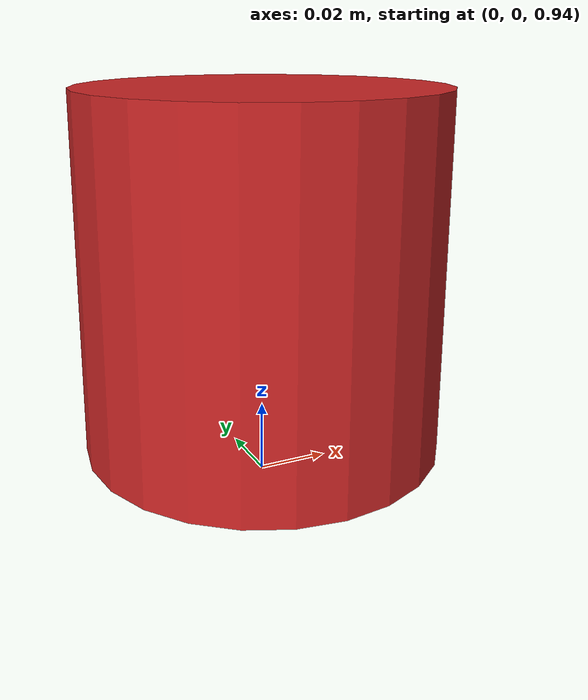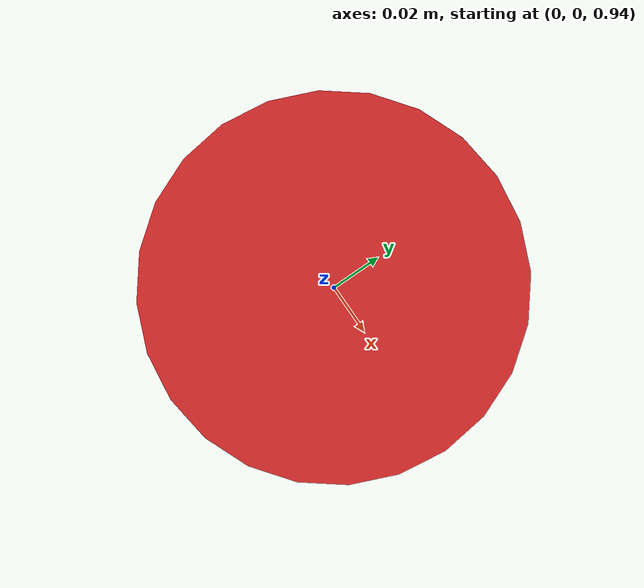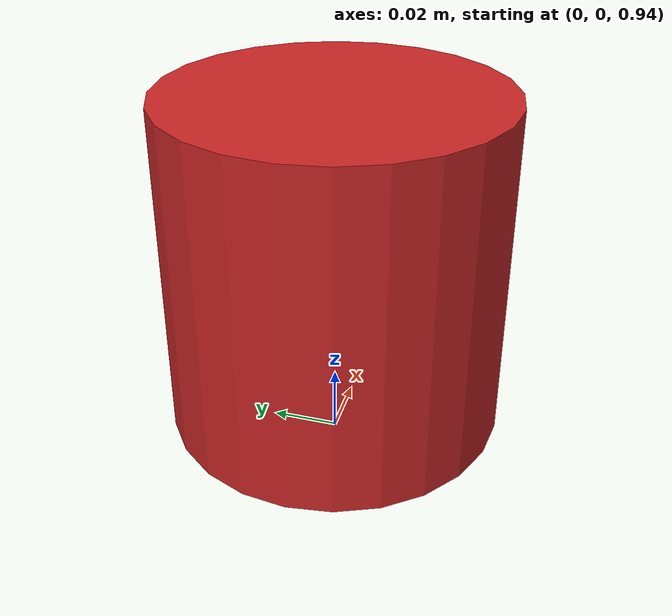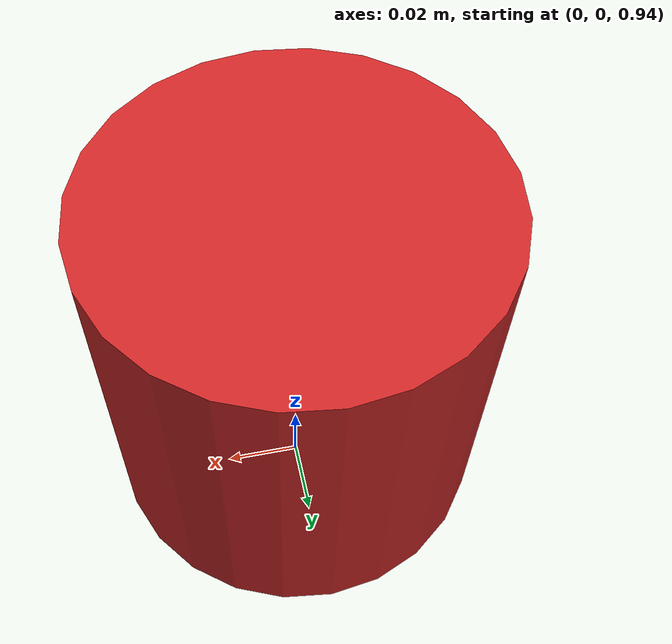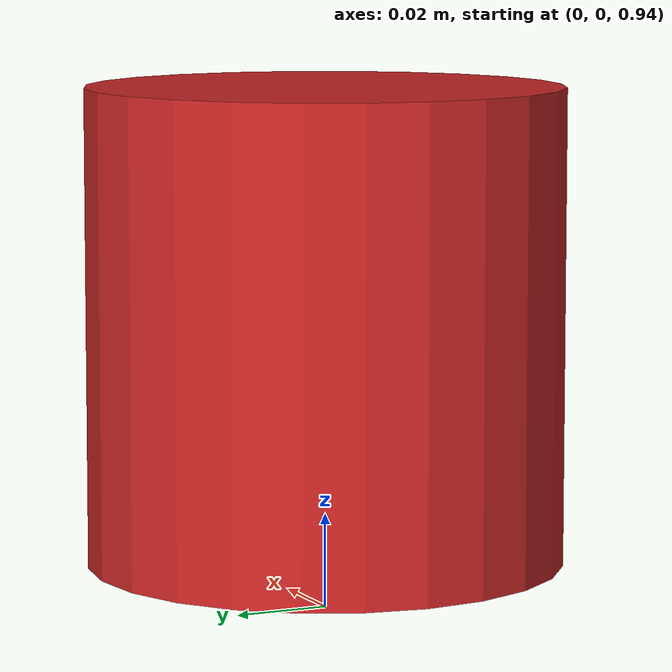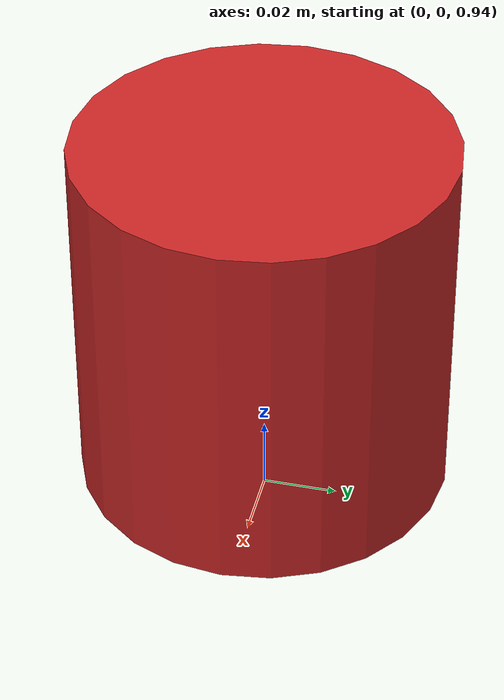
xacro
<?xml version="1.0"?>
<robot name="simple_lidar_on_platform" xmlns:xacro="http://wiki.ros.org/xacro">

  <!-- 引入您的6DOF平台宏 -->
  <xacro:include filename="$(find virtual_6dof)/urdf/virtual_6dof.xacro" />

  <!-- 【关键修复】定义虚拟的 world 链接以满足 URDF 解析器 -->
  <link name="world"/>

  <!-- 定义一个非常简单的雷达连杆（作为末端执行器） -->
  <link name="simple_lidar_link">
    <visual>
      <!-- 改为 URDF 支持的圆柱体 -->
      <geometry><cylinder length="0.1" radius="0.05"/></geometry>
      <material name="red"/>
    </visual>
    <!-- 碰撞体可以很小，但不能为零 -->
    <collision><geometry><sphere radius="0.02"/></geometry></collision>
    <inertial>
      <mass value="0.1"/>
      <inertia ixx="1e-5" ixy="0" ixz="0" iyy="1e-5" iyz="0" izz="1e-5"/>
    </inertial>
  </link>

  <!-- 简单的激光雷达传感器插件，用于在Gazebo中可视化扫描线 -->
  <gazebo reference="simple_lidar_link">
    <sensor name="simple_lidar_sensor" type="ray">
      <always_on>true</always_on>
      <visualize>true</visualize>
      <update_rate>10</update_rate>
      <ray>
        <scan>
          <horizontal>
            <samples>180</samples>
            <resolution>1.0</resolution>
            <min_angle>-1.57</min_angle>
            <max_angle>1.57</max_angle>
          </horizontal>
        </scan>
        <range>
          <min>0.1</min>
          <max>10.0</max>
          <resolution>0.01</resolution>
        </range>
      </ray>
      <plugin name="simple_lidar_controller" filename="libgazebo_ros_ray_sensor.so">
        <topicName>/simple_lidar/scan</topicName>
        <frameName>simple_lidar_link</frameName>
      </plugin>
    </sensor>
  </gazebo>

  <!-- ===================== 安装6DOF运动平台 ===================== -->
  <!-- 直接将平台安装在“world”上，末端连接我们定义的简单雷达 -->
  <xacro:virtual_6dof
    parent_link="world"
    end_link="simple_lidar_link">

    <!-- 平台在world中的初始安装位置 (X, Y, Z) -->
    <origin xyz="0 0 1" rpy="0 0 0"/>

    <!-- 雷达在平台末端的微小偏移，使其位于平台上方 -->
    <end_effector_offset xyz="0 0 0" rpy="0 0 0"/>

  </xacro:virtual_6dof>

</robot>

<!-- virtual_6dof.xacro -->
<robot name="virtual_6dof" xmlns:xacro="http://wiki.ros.org/xacro">

  <xacro:macro name="virtual_6dof"
    params="parent_link end_link *origin_offset *end_effector_offset">
    <!-- 平台基座连杆（连接外部父连杆） -->
    <link name="virtual_6dof_base_link">
      <inertial>
        <mass value="0.5"/>
        <inertia ixx="0.001" ixy="0.0" ixz="0.0" iyy="0.001" iyz="0.0" izz="0.001"/>
      </inertial>
      <visual>
        <geometry><box size="0 0 0"/></geometry>
        <material name="dark_gray"><color rgba="0.3 0.3 0.3 1"/></material>
      </visual>
      <collision><geometry><box size="0 0 0"/></geometry></collision>
    </link>

    <!-- 安装关节：连接外部父连杆和平台基座 -->
    <joint name="virtual_6dof_base_joint" type="fixed">
      <parent link="${parent_link}"/>
      <child link="virtual_6dof_base_link"/>
      <xacro:insert_block name="origin_offset"/>
    </joint>

    <!-- ===================== 6自由度运动关节链 ===================== -->

    <!-- 1. X轴平移关节 -->
    <joint name="virtual_6dof_x_trans_joint" type="prismatic">
      <parent link="virtual_6dof_base_link"/>
      <child link="virtual_6dof_x_trans_link"/>
      <origin xyz="0 0 0" rpy="0 0 0"/>
      <axis xyz="1 0 0"/>
      <limit lower="-50.0" upper="50.0" effort="100" velocity="0.5"/>
      <dynamics damping="15.0" friction="1.0"/>
    </joint>
    <link name="virtual_6dof_x_trans_link">
      <visual>
        <geometry><box size="0 0 0"/></geometry>
        <material name="x_axis"><color rgba="1 0.2 0.2 1"/></material>
      </visual>
      <collision><geometry><box size="0 0 0"/></geometry></collision>
      <inertial>
        <mass value="0.3"/>
        <inertia ixx="0.0005" ixy="0.0" ixz="0.0" iyy="0.0005" iyz="0.0" izz="0.0005"/>
      </inertial>
    </link>

    <!-- 2. Y轴平移关节 -->
    <joint name="virtual_6dof_y_trans_joint" type="prismatic">
      <parent link="virtual_6dof_x_trans_link"/>
      <child link="virtual_6dof_y_trans_link"/>
      <origin xyz="0 0 0" rpy="0 0 0"/>
      <axis xyz="0 1 0"/>
      <limit lower="-50.0" upper="50.0" effort="100" velocity="0.5"/>
      <dynamics damping="15.0" friction="1.0"/>
    </joint>
    <link name="virtual_6dof_y_trans_link">
      <visual>
        <geometry><box size="0 0 0"/></geometry>
        <material name="y_axis"><color rgba="0.2 1 0.2 1"/></material>
      </visual>
      <collision><geometry><box size="0 0 0"/></geometry></collision>
      <inertial>
        <mass value="0.3"/>
        <inertia ixx="0.0005" ixy="0.0" ixz="0.0" iyy="0.0005" iyz="0.0" izz="0.0005"/>
      </inertial>
    </link>

    <!-- 3. Z轴平移关节 -->
    <joint name="virtual_6dof_z_trans_joint" type="prismatic">
      <parent link="virtual_6dof_y_trans_link"/>
      <child link="virtual_6dof_z_trans_link"/>
      <origin xyz="0 0 0" rpy="0 0 0"/>
      <axis xyz="0 0 1"/>
      <limit lower="-50.0" upper="50.0" effort="100" velocity="0.5"/>
      <dynamics damping="15.0" friction="1.0"/>
    </joint>
    <link name="virtual_6dof_z_trans_link">
      <visual>
        <geometry><box size="0 0 0"/></geometry>
        <material name="z_axis"><color rgba="0.2 0.2 1 1"/></material>
      </visual>
      <collision><geometry><box size="0 0 0"/></geometry></collision>
      <inertial>
        <mass value="0.3"/>
        <inertia ixx="0.0005" ixy="0.0" ixz="0.0" iyy="0.0005" iyz="0.0" izz="0.0005"/>
      </inertial>
    </link>

    <!-- 4. Roll关节（绕X轴旋转） -->
    <joint name="virtual_6dof_roll_joint" type="revolute">
      <parent link="virtual_6dof_z_trans_link"/>
      <child link="virtual_6dof_roll_link"/>
      <origin xyz="0 0 0" rpy="0 0 0"/>
      <axis xyz="1 0 0"/>
      <limit lower="-3.14" upper="3.14" effort="30" velocity="2.0"/>
      <dynamics damping="15.0" friction="1.0"/>
    </joint>
    <link name="virtual_6dof_roll_link">
      <visual>
        <geometry><box size="0 0 0"/></geometry>
        <material name="roll"><color rgba="1 0.5 0 1"/></material>
      </visual>
      <collision><geometry><box size="0 0 0"/></geometry></collision>
      <inertial>
        <mass value="0.001"/>
        <inertia ixx="0.0002" ixy="0.0" ixz="0.0" iyy="0.0002" iyz="0.0" izz="0.0002"/>
      </inertial>
    </link>

    <!-- 5. Pitch关节（绕Y轴旋转） -->
    <joint name="virtual_6dof_pitch_joint" type="revolute">
      <parent link="virtual_6dof_roll_link"/>
      <child link="virtual_6dof_pitch_link"/>
      <origin xyz="0 0 0" rpy="0 0 0"/>
      <axis xyz="0 1 0"/>
      <limit lower="-1.57" upper="1.57" effort="30" velocity="2.0"/>
      <dynamics damping="8.0" friction="0.3"/>
    </joint>
    <link name="virtual_6dof_pitch_link">
      <visual>
        <geometry><box size="0 0 0"/></geometry>
        <material name="roll"><color rgba="1 0.5 0 1"/></material>
      </visual>
      <collision><geometry><box size="0 0 0"/></geometry></collision>
      <inertial>
        <mass value="0.001"/>
        <inertia ixx="0.0002" ixy="0.0" ixz="0.0" iyy="0.0002" iyz="0.0" izz="0.0002"/>
      </inertial>
    </link>

    <!-- 6. Yaw关节（绕Z轴旋转） -->
    <joint name="virtual_6dof_yaw_joint" type="revolute">
      <parent link="virtual_6dof_pitch_link"/>
      <child link="virtual_6dof_yaw_link"/>
      <origin xyz="0 0 0" rpy="0 0 0"/>
      <axis xyz="0 0 1"/>
      <limit lower="-3.14" upper="3.14" effort="30" velocity="2.0"/>
      <dynamics damping="8.0" friction="0.3"/>
    </joint>
    <link name="virtual_6dof_yaw_link">
      <visual>
        <geometry><box size="0 0 0"/></geometry>
        <material name="roll"><color rgba="1 0.5 0 1"/></material>
      </visual>
      <collision><geometry><box size="0 0 0"/></geometry></collision>
      <inertial>
        <mass value="0.001"/>
        <inertia ixx="0.0002" ixy="0.0" ixz="0.0" iyy="0.0002" iyz="0.0" izz="0.0002"/>
      </inertial>
    </link>

    <!-- 末端执行器连接关节：连接平台末端和外部设备 -->
    <joint name="virtual_6dof_end_effector_joint" type="fixed">
      <parent link="virtual_6dof_yaw_link"/>
      <child link="${end_link}"/>
      <xacro:insert_block name="end_effector_offset"/>
    </joint>

    <!-- ===================== Gazebo插件配置 ===================== -->

    <gazebo>
      <plugin name="virtual_6dof_gazebo_ros_control" filename="libgazebo_ros_control.so">
      </plugin>
    </gazebo>

    <!-- ===================== 传动装置定义 ===================== -->

    <!-- X轴平移关节传动 -->
    <transmission name="virtual_6dof_x_trans_joint_trans">
      <type>transmission_interface/SimpleTransmission</type>
      <joint name="virtual_6dof_x_trans_joint">
        <hardwareInterface>hardware_interface/PositionJointInterface</hardwareInterface>
      </joint>
      <actuator name="virtual_6dof_x_trans_joint_motor">
        <mechanicalReduction>1</mechanicalReduction>
      </actuator>
    </transmission>

    <!-- Y轴平移关节传动 -->
    <transmission name="virtual_6dof_y_trans_joint_trans">
      <type>transmission_interface/SimpleTransmission</type>
      <joint name="virtual_6dof_y_trans_joint">
        <hardwareInterface>hardware_interface/PositionJointInterface</hardwareInterface>
      </joint>
      <actuator name="virtual_6dof_y_trans_joint_motor">
        <mechanicalReduction>1</mechanicalReduction>
      </actuator>
    </transmission>

    <!-- Z轴平移关节传动 -->
    <transmission name="virtual_6dof_z_trans_joint_trans">
      <type>transmission_interface/SimpleTransmission</type>
      <joint name="virtual_6dof_z_trans_joint">
        <hardwareInterface>hardware_interface/PositionJointInterface</hardwareInterface>
      </joint>
      <actuator name="virtual_6dof_z_trans_joint_motor">
        <mechanicalReduction>1</mechanicalReduction>
      </actuator>
    </transmission>

    <!-- Roll关节传动 -->
    <transmission name="virtual_6dof_roll_joint_trans">
      <type>transmission_interface/SimpleTransmission</type>
      <joint name="virtual_6dof_roll_joint">
        <hardwareInterface>hardware_interface/PositionJointInterface</hardwareInterface>
      </joint>
      <actuator name="virtual_6dof_roll_joint_motor">
        <mechanicalReduction>1</mechanicalReduction>
      </actuator>
    </transmission>

    <!-- Pitch关节传动 -->
    <transmission name="virtual_6dof_pitch_joint_trans">
      <type>transmission_interface/SimpleTransmission</type>
      <joint name="virtual_6dof_pitch_joint">
        <hardwareInterface>hardware_interface/PositionJointInterface</hardwareInterface>
      </joint>
      <actuator name="virtual_6dof_pitch_joint_motor">
        <mechanicalReduction>1</mechanicalReduction>
      </actuator>
    </transmission>

    <!-- Yaw关节传动 -->
    <transmission name="virtual_6dof_yaw_joint_trans">
      <type>transmission_interface/SimpleTransmission</type>
      <joint name="virtual_6dof_yaw_joint">
        <hardwareInterface>hardware_interface/PositionJointInterface</hardwareInterface>
      </joint>
      <actuator name="virtual_6dof_yaw_joint_motor">
        <mechanicalReduction>1</mechanicalReduction>
      </actuator>
    </transmission>

  </xacro:macro>

</robot>
